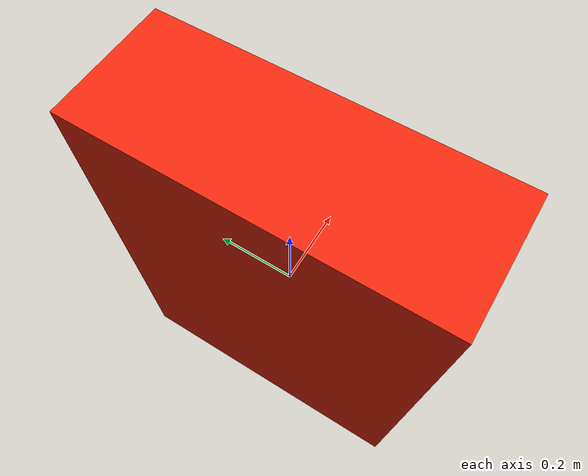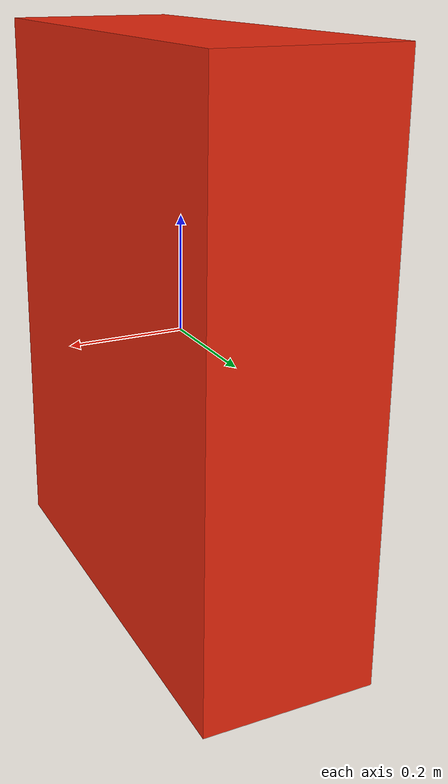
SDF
<?xml version="1.0"?>
<sdf version="1.9">
  <model name="integration_test_obstacle">
    <static>true</static>
    <link name="link">
      <collision name="collision"><geometry><box><size>0.30 0.80 1.00</size></box></geometry></collision>
      <visual name="visual">
        <geometry><box><size>0.30 0.80 1.00</size></box></geometry>
        <material><ambient>0.9 0.15 0.05 1</ambient><diffuse>0.9 0.15 0.05 1</diffuse></material>
      </visual>
    </link>
  </model>
</sdf>
